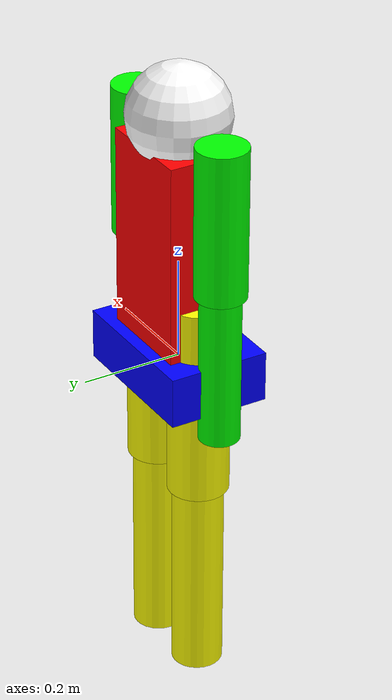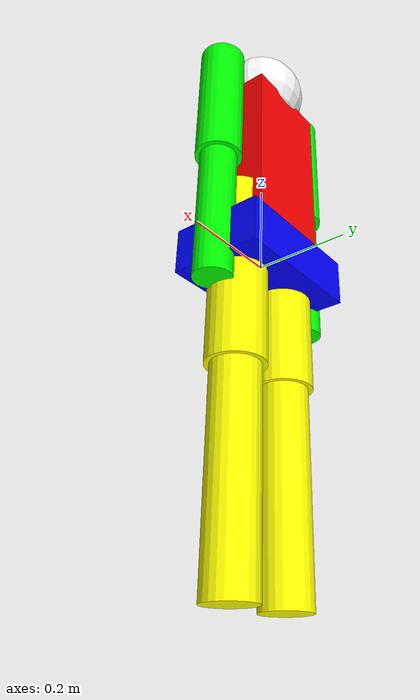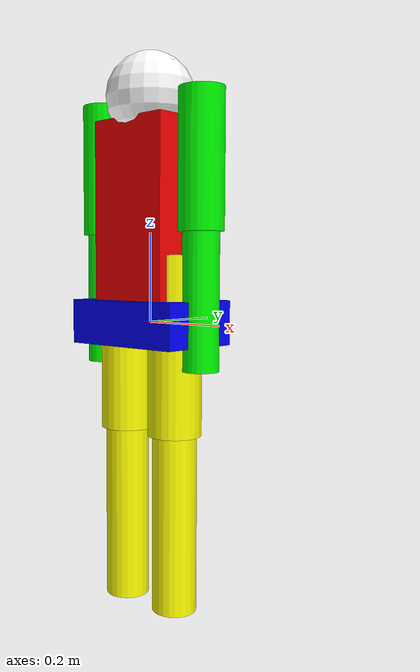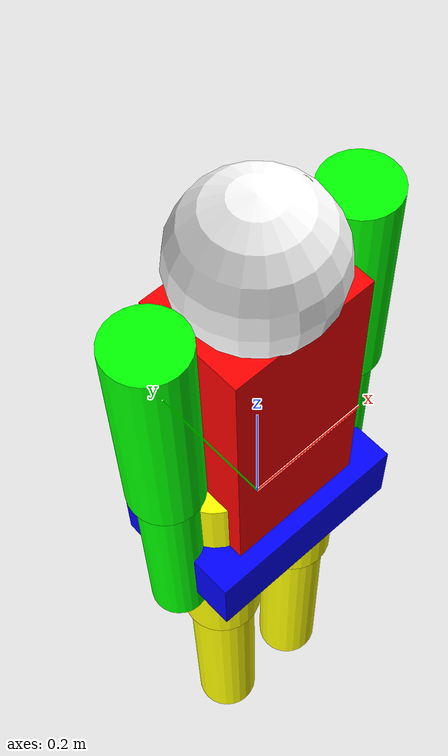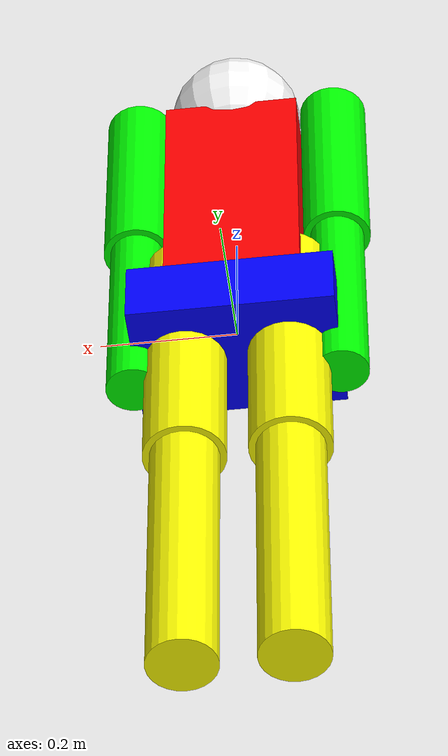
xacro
<?xml version="1.0"?>
<robot xmlns:xacro="http://www.ros.org/wiki/xacro" name="humanoid_gazebo">
  <!-- Gazebo-specific properties -->
  <gazebo>
    <plugin filename="libgazebo_ros2_control.so" name="gazebo_ros2_control">
      <parameters>$(find gazebo_humanoid_robot)/config/humanoid_control.yaml</parameters>
    </plugin>
  </gazebo>

  <!-- Base/Fixed link -->
  <link name="base_link">
    <visual>
      <geometry>
        <box size="0.3 0.2 0.1"/>
      </geometry>
      <material name="blue">
        <color rgba="0 0 1 1"/>
      </material>
    </visual>
    <collision>
      <geometry>
        <box size="0.3 0.2 0.1"/>
      </geometry>
    </collision>
    <inertial>
      <mass value="5.0"/>
      <inertia ixx="0.1" ixy="0.0" ixz="0.0" iyy="0.1" iyz="0.0" izz="0.1"/>
    </inertial>
  </link>

  <!-- Torso -->
  <link name="torso">
    <visual>
      <geometry>
        <box size="0.2 0.15 0.4"/>
      </geometry>
      <material name="red">
        <color rgba="1 0 0 1"/>
      </material>
    </visual>
    <collision>
      <geometry>
        <box size="0.2 0.15 0.4"/>
      </geometry>
    </collision>
    <inertial>
      <mass value="3.0"/>
      <inertia ixx="0.05" ixy="0.0" ixz="0.0" iyy="0.05" iyz="0.0" izz="0.05"/>
    </inertial>
  </link>

  <joint name="torso_joint" type="fixed">
    <parent link="base_link"/>
    <child link="torso"/>
    <origin xyz="0 0 0.25" rpy="0 0 0"/>
  </joint>

  <!-- Head -->
  <link name="head">
    <visual>
      <geometry>
        <sphere radius="0.1"/>
      </geometry>
      <material name="white">
        <color rgba="1 1 1 1"/>
      </material>
    </visual>
    <collision>
      <geometry>
        <sphere radius="0.1"/>
      </geometry>
    </collision>
    <inertial>
      <mass value="1.0"/>
      <inertia ixx="0.004" ixy="0.0" ixz="0.0" iyy="0.004" iyz="0.0" izz="0.004"/>
    </inertial>
  </link>

  <joint name="neck_joint" type="revolute">
    <parent link="torso"/>
    <child link="head"/>
    <origin xyz="0 0 0.25" rpy="0 0 0"/>
    <axis xyz="0 1 0"/>
    <limit lower="-0.5" upper="0.5" effort="100" velocity="1"/>
    <dynamics damping="0.1" friction="0.0"/>
  </joint>

  <!-- Depth Camera on head -->
  <link name="camera_link">
    <collision>
      <origin xyz="0 0 0" rpy="0 0 0"/>
      <geometry>
        <box size="0.05 0.05 0.05"/>
      </geometry>
    </collision>

    <visual>
      <origin xyz="0 0 0" rpy="0 0 0"/>
      <geometry>
        <box size="0.05 0.05 0.05"/>
      </geometry>
      <material name="black">
        <color rgba="0 0 0 1"/>
      </material>
    </visual>

    <inertial>
      <mass value="0.1"/>
      <origin xyz="0 0 0" rpy="0 0 0"/>
      <box_inertia m="0.1" x="0.05" y="0.05" z="0.05"/>
      <inertia ixx="0.0001" ixy="0" ixz="0" iyy="0.0001" iyz="0" izz="0.0001"/>
    </inertial>
  </link>

  <joint name="camera_joint" type="fixed">
    <parent link="head"/>
    <child link="camera_link"/>
    <origin xyz="0.05 0 0" rpy="0 0 0"/>
  </joint>

  <!-- LiDAR on head -->
  <link name="lidar_link">
    <collision>
      <origin xyz="0 0 0" rpy="0 0 0"/>
      <geometry>
        <cylinder radius="0.02" length="0.04"/>
      </geometry>
    </collision>

    <visual>
      <origin xyz="0 0 0" rpy="0 0 0"/>
      <geometry>
        <cylinder radius="0.02" length="0.04"/>
      </geometry>
      <material name="gray">
        <color rgba="0.5 0.5 0.5 1"/>
      </material>
    </visual>

    <inertial>
      <mass value="0.2"/>
      <origin xyz="0 0 0" rpy="0 0 0"/>
      <cylinder_inertia m="0.2" r="0.02" h="0.04"/>
      <inertia ixx="0.0002" ixy="0" ixz="0" iyy="0.0002" iyz="0" izz="0.0001"/>
    </inertial>
  </link>

  <joint name="lidar_joint" type="fixed">
    <parent link="head"/>
    <child link="lidar_link"/>
    <origin xyz="0.05 0 0.05" rpy="0 0 0"/>
  </joint>

  <!-- IMU in torso -->
  <link name="imu_link">
    <inertial>
      <mass value="0.01"/>
      <inertia ixx="0.00001" ixy="0" ixz="0" iyy="0.00001" iyz="0" izz="0.00001"/>
    </inertial>
  </link>

  <joint name="imu_joint" type="fixed">
    <parent link="torso"/>
    <child link="imu_link"/>
    <origin xyz="0 0 0" rpy="0 0 0"/>
  </joint>

  <!-- Left Arm -->
  <link name="left_upper_arm">
    <visual>
      <geometry>
        <cylinder length="0.3" radius="0.05"/>
      </geometry>
      <material name="green">
        <color rgba="0 1 0 1"/>
      </material>
    </visual>
    <collision>
      <geometry>
        <cylinder length="0.3" radius="0.05"/>
      </geometry>
    </collision>
    <inertial>
      <mass value="0.8"/>
      <inertia ixx="0.01" ixy="0.0" ixz="0.0" iyy="0.01" iyz="0.0" izz="0.002"/>
    </inertial>
  </link>

  <joint name="left_shoulder_joint" type="revolute">
    <parent link="torso"/>
    <child link="left_upper_arm"/>
    <origin xyz="0.15 0 0.1" rpy="0 0 0"/>
    <axis xyz="0 1 0"/>
    <limit lower="-1.57" upper="1.57" effort="50" velocity="2"/>
    <dynamics damping="0.5" friction="0.1"/>
  </joint>

  <link name="left_lower_arm">
    <visual>
      <geometry>
        <cylinder length="0.3" radius="0.04"/>
      </geometry>
      <material name="green">
        <color rgba="0 1 0 1"/>
      </material>
    </visual>
    <collision>
      <geometry>
        <cylinder length="0.3" radius="0.04"/>
      </geometry>
    </collision>
    <inertial>
      <mass value="0.6"/>
      <inertia ixx="0.008" ixy="0.0" ixz="0.0" iyy="0.008" iyz="0.0" izz="0.0015"/>
    </inertial>
  </link>

  <joint name="left_elbow_joint" type="revolute">
    <parent link="left_upper_arm"/>
    <child link="left_lower_arm"/>
    <origin xyz="0 0 -0.3" rpy="0 0 0"/>
    <axis xyz="0 1 0"/>
    <limit lower="0" upper="1.57" effort="50" velocity="2"/>
    <dynamics damping="0.5" friction="0.1"/>
  </joint>

  <!-- Right Arm -->
  <link name="right_upper_arm">
    <visual>
      <geometry>
        <cylinder length="0.3" radius="0.05"/>
      </geometry>
      <material name="green">
        <color rgba="0 1 0 1"/>
      </material>
    </visual>
    <collision>
      <geometry>
        <cylinder length="0.3" radius="0.05"/>
      </geometry>
    </collision>
    <inertial>
      <mass value="0.8"/>
      <inertia ixx="0.01" ixy="0.0" ixz="0.0" iyy="0.01" iyz="0.0" izz="0.002"/>
    </inertial>
  </link>

  <joint name="right_shoulder_joint" type="revolute">
    <parent link="torso"/>
    <child link="right_upper_arm"/>
    <origin xyz="-0.15 0 0.1" rpy="0 0 0"/>
    <axis xyz="0 1 0"/>
    <limit lower="-1.57" upper="1.57" effort="50" velocity="2"/>
    <dynamics damping="0.5" friction="0.1"/>
  </joint>

  <link name="right_lower_arm">
    <visual>
      <geometry>
        <cylinder length="0.3" radius="0.04"/>
      </geometry>
      <material name="green">
        <color rgba="0 1 0 1"/>
      </material>
    </visual>
    <collision>
      <geometry>
        <cylinder length="0.3" radius="0.04"/>
      </geometry>
    </collision>
    <inertial>
      <mass value="0.6"/>
      <inertia ixx="0.008" ixy="0.0" ixz="0.0" iyy="0.008" iyz="0.0" izz="0.0015"/>
    </inertial>
  </link>

  <joint name="right_elbow_joint" type="revolute">
    <parent link="right_upper_arm"/>
    <child link="right_lower_arm"/>
    <origin xyz="0 0 -0.3" rpy="0 0 0"/>
    <axis xyz="0 1 0"/>
    <limit lower="0" upper="1.57" effort="50" velocity="2"/>
    <dynamics damping="0.5" friction="0.1"/>
  </joint>

  <!-- Left Leg -->
  <link name="left_upper_leg">
    <visual>
      <geometry>
        <cylinder length="0.4" radius="0.06"/>
      </geometry>
      <material name="yellow">
        <color rgba="1 1 0 1"/>
      </material>
    </visual>
    <collision>
      <geometry>
        <cylinder length="0.4" radius="0.06"/>
      </geometry>
    </collision>
    <inertial>
      <mass value="1.2"/>
      <inertia ixx="0.02" ixy="0.0" ixz="0.0" iyy="0.02" iyz="0.0" izz="0.003"/>
    </inertial>
  </link>

  <joint name="left_hip_joint" type="revolute">
    <parent link="base_link"/>
    <child link="left_upper_leg"/>
    <origin xyz="0.075 0 -0.05" rpy="0 0 0"/>
    <axis xyz="0 1 0"/>
    <limit lower="-1.57" upper="1.57" effort="100" velocity="1"/>
    <dynamics damping="1.0" friction="0.2"/>
  </joint>

  <link name="left_lower_leg">
    <visual>
      <geometry>
        <cylinder length="0.4" radius="0.05"/>
      </geometry>
      <material name="yellow">
        <color rgba="1 1 0 1"/>
      </material>
    </visual>
    <collision>
      <geometry>
        <cylinder length="0.4" radius="0.05"/>
      </geometry>
    </collision>
    <inertial>
      <mass value="1.0"/>
      <inertia ixx="0.015" ixy="0.0" ixz="0.0" iyy="0.015" iyz="0.0" izz="0.0025"/>
    </inertial>
  </link>

  <joint name="left_knee_joint" type="revolute">
    <parent link="left_upper_leg"/>
    <child link="left_lower_leg"/>
    <origin xyz="0 0 -0.4" rpy="0 0 0"/>
    <axis xyz="0 1 0"/>
    <limit lower="-1.57" upper="0" effort="100" velocity="1"/>
    <dynamics damping="1.0" friction="0.2"/>
  </joint>

  <!-- Right Leg -->
  <link name="right_upper_leg">
    <visual>
      <geometry>
        <cylinder length="0.4" radius="0.06"/>
      </geometry>
      <material name="yellow">
        <color rgba="1 1 0 1"/>
      </material>
    </visual>
    <collision>
      <geometry>
        <cylinder length="0.4" radius="0.06"/>
      </geometry>
    </collision>
    <inertial>
      <mass value="1.2"/>
      <inertia ixx="0.02" ixy="0.0" ixz="0.0" iyy="0.02" iyz="0.0" izz="0.003"/>
    </inertial>
  </link>

  <joint name="right_hip_joint" type="revolute">
    <parent link="base_link"/>
    <child link="right_upper_leg"/>
    <origin xyz="-0.075 0 -0.05" rpy="0 0 0"/>
    <axis xyz="0 1 0"/>
    <limit lower="-1.57" upper="1.57" effort="100" velocity="1"/>
    <dynamics damping="1.0" friction="0.2"/>
  </joint>

  <link name="right_lower_leg">
    <visual>
      <geometry>
        <cylinder length="0.4" radius="0.05"/>
      </geometry>
      <material name="yellow">
        <color rgba="1 1 0 1"/>
      </material>
    </visual>
    <collision>
      <geometry>
        <cylinder length="0.4" radius="0.05"/>
      </geometry>
    </collision>
    <inertial>
      <mass value="1.0"/>
      <inertia ixx="0.015" ixy="0.0" ixz="0.0" iyy="0.015" iyz="0.0" izz="0.0025"/>
    </inertial>
  </link>

  <joint name="right_knee_joint" type="revolute">
    <parent link="right_upper_leg"/>
    <child link="right_lower_leg"/>
    <origin xyz="0 0 -0.4" rpy="0 0 0"/>
    <axis xyz="0 1 0"/>
    <limit lower="-1.57" upper="0" effort="100" velocity="1"/>
    <dynamics damping="1.0" friction="0.2"/>
  </joint>

  <!-- Gazebo sensor definitions -->
  <!-- Depth Camera -->
  <gazebo reference="camera_link">
    <sensor name="depth_camera" type="depth">
      <always_on>true</always_on>
      <visualize>true</visualize>
      <update_rate>30</update_rate>
      <camera>
        <horizontal_fov>1.047</horizontal_fov> <!-- 60 degrees -->
        <image>
          <format>R8G8B8</format>
          <width>640</width>
          <height>480</height>
        </image>
        <clip>
          <near>0.1</near>
          <far>10.0</far>
        </clip>
      </camera>
      <plugin name="camera_controller" filename="libgazebo_ros_camera.so">
        <frame_name>camera_link</frame_name>
        <min_depth>0.1</min_depth>
        <max_depth>10.0</max_depth>
      </plugin>
    </sensor>
  </gazebo>

  <!-- LiDAR -->
  <gazebo reference="lidar_link">
    <sensor name="lidar" type="ray">
      <always_on>true</always_on>
      <visualize>true</visualize>
      <update_rate>10</update_rate>
      <ray>
        <scan>
          <horizontal>
            <samples>360</samples>
            <resolution>1</resolution>
            <min_angle>-3.14159</min_angle>
            <max_angle>3.14159</max_angle>
          </horizontal>
        </scan>
        <range>
          <min>0.1</min>
          <max>10.0</max>
          <resolution>0.01</resolution>
        </range>
      </ray>
      <plugin name="lidar_controller" filename="libgazebo_ros_ray_sensor.so">
        <ros>
          <namespace>/humanoid_robot</namespace>
          <remapping>~/out:=scan</remapping>
        </ros>
        <output_type>sensor_msgs/LaserScan</output_type>
      </plugin>
    </sensor>
  </gazebo>

  <!-- IMU -->
  <gazebo reference="imu_link">
    <sensor name="imu_sensor" type="imu">
      <always_on>true</always_on>
      <update_rate>100</update_rate>
      <visualize>false</visualize>
      <imu>
        <angular_velocity>
          <x>
            <noise type="gaussian">
              <mean>0.0</mean>
              <stddev>2e-4</stddev>
            </noise>
          </x>
          <y>
            <noise type="gaussian">
              <mean>0.0</mean>
              <stddev>2e-4</stddev>
            </noise>
          </y>
          <z>
            <noise type="gaussian">
              <mean>0.0</mean>
              <stddev>2e-4</stddev>
            </noise>
          </z>
        </angular_velocity>
        <linear_acceleration>
          <x>
            <noise type="gaussian">
              <mean>0.0</mean>
              <stddev>1.7e-2</stddev>
            </noise>
          </x>
          <y>
            <noise type="gaussian">
              <mean>0.0</mean>
              <stddev>1.7e-2</stddev>
            </noise>
          </y>
          <z>
            <noise type="gaussian">
              <mean>0.0</mean>
              <stddev>1.7e-2</stddev>
            </noise>
          </z>
        </linear_acceleration>
      </imu>
      <plugin name="imu_controller" filename="libgazebo_ros_imu.so">
        <ros>
          <namespace>/humanoid_robot</namespace>
          <remapping>~/out:=imu</remapping>
        </ros>
        <frame_name>imu_link</frame_name>
      </plugin>
    </sensor>
  </gazebo>

  <!-- Gazebo materials -->
  <gazebo reference="base_link">
    <material>Gazebo/Blue</material>
  </gazebo>

  <gazebo reference="torso">
    <material>Gazebo/Red</material>
  </gazebo>

  <gazebo reference="head">
    <material>Gazebo/White</material>
  </gazebo>

  <gazebo reference="left_upper_arm">
    <material>Gazebo/Green</material>
  </gazebo>

  <gazebo reference="left_lower_arm">
    <material>Gazebo/Green</material>
  </gazebo>

  <gazebo reference="right_upper_arm">
    <material>Gazebo/Green</material>
  </gazebo>

  <gazebo reference="right_lower_arm">
    <material>Gazebo/Green</material>
  </gazebo>

  <gazebo reference="left_upper_leg">
    <material>Gazebo/Yellow</material>
  </gazebo>

  <gazebo reference="left_lower_leg">
    <material>Gazebo/Yellow</material>
  </gazebo>

  <gazebo reference="right_upper_leg">
    <material>Gazebo/Yellow</material>
  </gazebo>

  <gazebo reference="right_lower_leg">
    <material>Gazebo/Yellow</material>
  </gazebo>
</robot>
